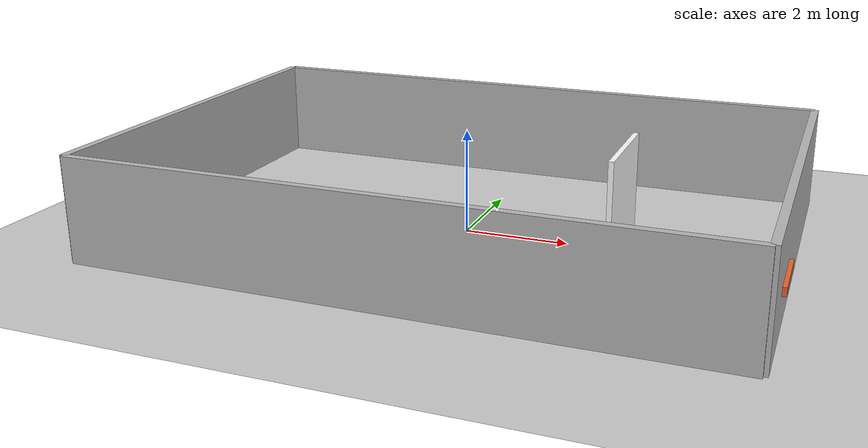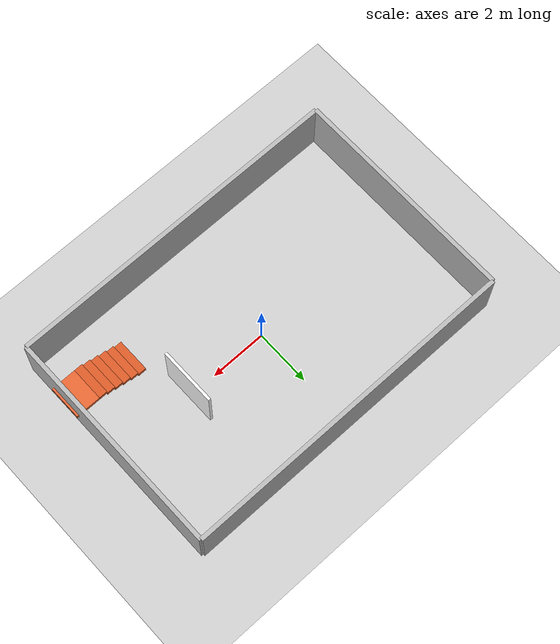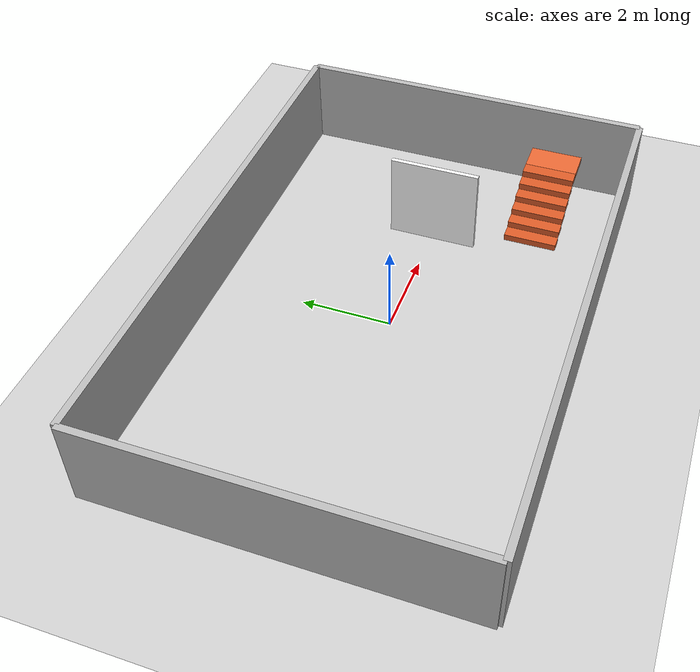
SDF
<?xml version="1.0" ?>
<sdf version="1.7">
  <world name="stairs_camera_test">
    <physics name="2ms" type="ignored">
      <max_step_size>0.002</max_step_size>
      <real_time_factor>1.0</real_time_factor>
    </physics>

    <plugin name="gz::sim::systems::Physics" filename="gz-sim-physics-system"/>
    <plugin name="gz::sim::systems::UserCommands" filename="gz-sim-user-commands-system"/>
    <plugin name="gz::sim::systems::SceneBroadcaster" filename="gz-sim-scene-broadcaster-system"/>
    <plugin name="gz::sim::systems::Sensors" filename="gz-sim-sensors-system">
      <render_engine>ogre2</render_engine>
    </plugin>
    <plugin name="gz::sim::systems::Imu" filename="gz-sim-imu-system"/>

    <light type="directional" name="sun">
      <cast_shadows>false</cast_shadows>
      <pose>0 0 10 0 0 0</pose>
      <diffuse>0.8 0.8 0.8 1</diffuse>
      <specular>0.2 0.2 0.2 1</specular>
      <direction>-0.5 0.1 -0.9</direction>
    </light>

    <model name="ground_plane">
      <static>true</static>
      <link name="link">
        <collision name="collision">
          <geometry>
            <plane>
              <normal>0 0 1</normal>
              <size>60 60</size>
            </plane>
          </geometry>
        </collision>
        <visual name="visual">
          <geometry>
            <plane>
              <normal>0 0 1</normal>
              <size>60 60</size>
            </plane>
          </geometry>
        </visual>
      </link>
    </model>

    <model name="wall_north">
      <static>true</static>
      <pose>0 4 1 0 0 0</pose>
      <link name="link">
        <collision name="collision"><geometry><box><size>12 0.15 2.0</size></box></geometry></collision>
        <visual name="visual"><geometry><box><size>12 0.15 2.0</size></box></geometry></visual>
      </link>
    </model>
    <model name="wall_south">
      <static>true</static>
      <pose>0 -4 1 0 0 0</pose>
      <link name="link">
        <collision name="collision"><geometry><box><size>12 0.15 2.0</size></box></geometry></collision>
        <visual name="visual"><geometry><box><size>12 0.15 2.0</size></box></geometry></visual>
      </link>
    </model>
    <model name="wall_east">
      <static>true</static>
      <pose>6 0 1 0 0 0</pose>
      <link name="link">
        <collision name="collision"><geometry><box><size>0.15 8 2.0</size></box></geometry></collision>
        <visual name="visual"><geometry><box><size>0.15 8 2.0</size></box></geometry></visual>
      </link>
    </model>
    <model name="wall_west">
      <static>true</static>
      <pose>-6 0 1 0 0 0</pose>
      <link name="link">
        <collision name="collision"><geometry><box><size>0.15 8 2.0</size></box></geometry></collision>
        <visual name="visual"><geometry><box><size>0.15 8 2.0</size></box></geometry></visual>
      </link>
    </model>

    <!-- Realistic staircase for camera testing -->
    <model name="staircase_real">
      <static>true</static>
      <pose>3.6 -2.2 0 0 0 3.14159</pose>

      <link name="step_1">
        <pose>0 0 0.075 0 0 0</pose>
        <collision name="collision"><geometry><box><size>0.30 1.20 0.15</size></box></geometry></collision>
        <visual name="visual"><geometry><box><size>0.30 1.20 0.15</size></box></geometry><material><ambient>0.85 0.35 0.15 1</ambient><diffuse>0.85 0.35 0.15 1</diffuse><specular>0.10 0.10 0.10 1</specular></material></visual>
      </link>
      <link name="step_2">
        <pose>-0.30 0 0.225 0 0 0</pose>
        <collision name="collision"><geometry><box><size>0.30 1.20 0.15</size></box></geometry></collision>
        <visual name="visual"><geometry><box><size>0.30 1.20 0.15</size></box></geometry><material><ambient>0.85 0.35 0.15 1</ambient><diffuse>0.85 0.35 0.15 1</diffuse><specular>0.10 0.10 0.10 1</specular></material></visual>
      </link>
      <link name="step_3">
        <pose>-0.60 0 0.375 0 0 0</pose>
        <collision name="collision"><geometry><box><size>0.30 1.20 0.15</size></box></geometry></collision>
        <visual name="visual"><geometry><box><size>0.30 1.20 0.15</size></box></geometry><material><ambient>0.85 0.35 0.15 1</ambient><diffuse>0.85 0.35 0.15 1</diffuse><specular>0.10 0.10 0.10 1</specular></material></visual>
      </link>
      <link name="step_4">
        <pose>-0.90 0 0.525 0 0 0</pose>
        <collision name="collision"><geometry><box><size>0.30 1.20 0.15</size></box></geometry></collision>
        <visual name="visual"><geometry><box><size>0.30 1.20 0.15</size></box></geometry><material><ambient>0.85 0.35 0.15 1</ambient><diffuse>0.85 0.35 0.15 1</diffuse><specular>0.10 0.10 0.10 1</specular></material></visual>
      </link>
      <link name="step_5">
        <pose>-1.20 0 0.675 0 0 0</pose>
        <collision name="collision"><geometry><box><size>0.30 1.20 0.15</size></box></geometry></collision>
        <visual name="visual"><geometry><box><size>0.30 1.20 0.15</size></box></geometry><material><ambient>0.85 0.35 0.15 1</ambient><diffuse>0.85 0.35 0.15 1</diffuse><specular>0.10 0.10 0.10 1</specular></material></visual>
      </link>
      <link name="step_6">
        <pose>-1.50 0 0.825 0 0 0</pose>
        <collision name="collision"><geometry><box><size>0.30 1.20 0.15</size></box></geometry></collision>
        <visual name="visual"><geometry><box><size>0.30 1.20 0.15</size></box></geometry><material><ambient>0.85 0.35 0.15 1</ambient><diffuse>0.85 0.35 0.15 1</diffuse><specular>0.10 0.10 0.10 1</specular></material></visual>
      </link>

      <link name="landing">
        <pose>-2.10 0 0.825 0 0 0</pose>
        <collision name="collision"><geometry><box><size>0.90 1.20 0.15</size></box></geometry></collision>
        <visual name="visual"><geometry><box><size>0.90 1.20 0.15</size></box></geometry><material><ambient>0.90 0.40 0.20 1</ambient><diffuse>0.90 0.40 0.20 1</diffuse><specular>0.10 0.10 0.10 1</specular></material></visual>
      </link>
    </model>
    <!-- Photo Billboard for Camera Testing -->
    <model name="photo_billboard">
      <static>true</static>
      <!-- Placed 3 meters in front of the chair's spawn point -->
      <pose>3 0 1 0 0 0</pose>
      <link name="link">
        <collision name="collision"><geometry><box><size>0.1 2 2</size></box></geometry></collision>
        <visual name="visual">
          <geometry><box><size>0.1 2 2</size></box></geometry>
          <material>
            <ambient>1 1 1 1</ambient>
            <diffuse>1 1 1 1</diffuse>
            <pbr>
              <metal>
                <albedo_map>file:///home/ayadiab/chair_ws/src/medical_wheelchair/worlds/stair1.jpg</albedo_map>
                <roughness>1.0</roughness>
                <metalness>0.0</metalness>
              </metal>
            </pbr>
          </material>
        </visual>
      </link>
    </model>

  </world>
</sdf>
